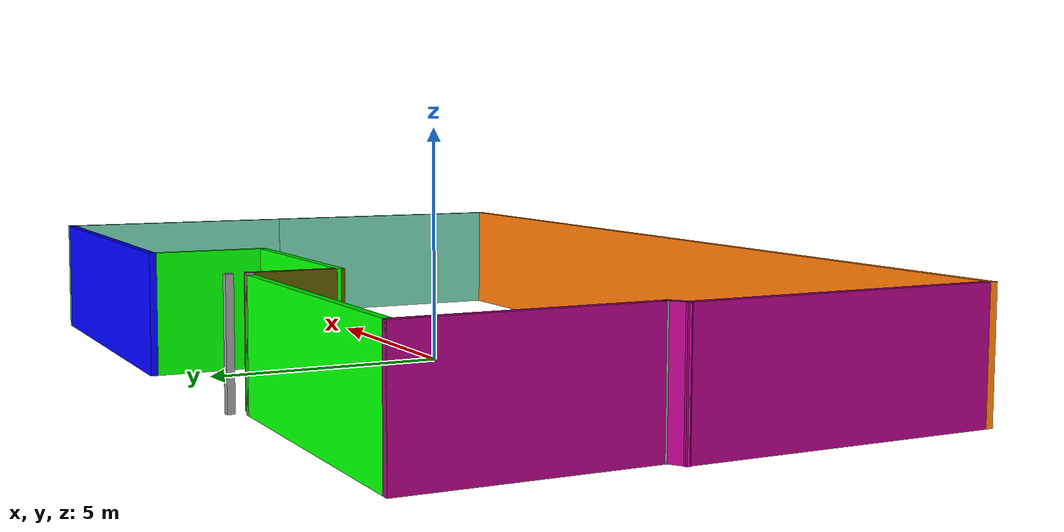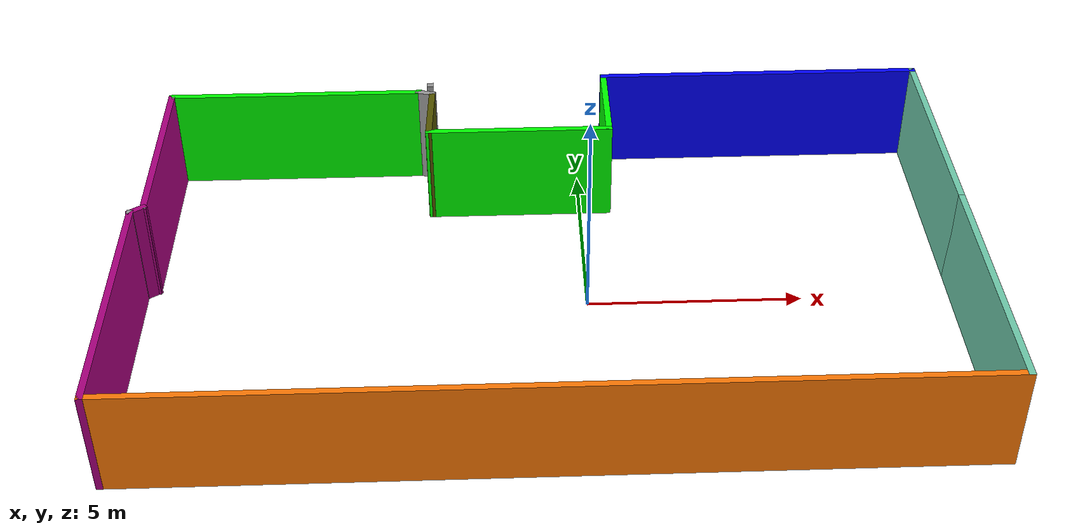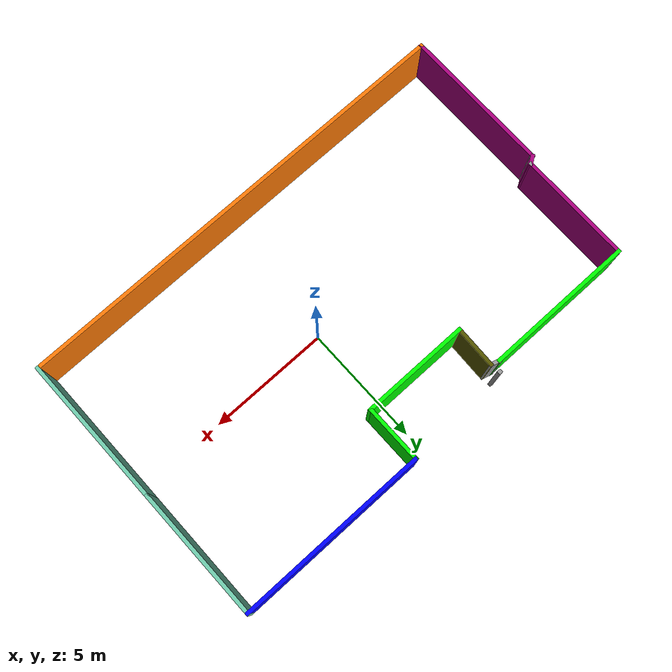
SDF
<?xml version='1.0'?>
<sdf version='1.6'>
  <model name='color_room'>
    <pose frame=''>-0.901218 0.253634 0 0 -0 0</pose>
    <link name='Wall_59'>
      <collision name='Wall_59_Collision'>
        <geometry>
          <box>
            <size>6.25 0.15 2.5</size>
          </box>
        </geometry>
        <pose frame=''>0 0 1.25 0 -0 0</pose>
      </collision>
      <visual name='Wall_59_Visual'>
        <pose frame=''>0 0 1.25 0 -0 0</pose>
        <geometry>
          <box>
            <size>6.25 0.15 2.5</size>
          </box>
        </geometry>
        <material>
          <script>
            <uri>file://media/materials/scripts/gazebo.material</uri>
            <name>Gazebo/Grey</name>
          </script>
          <ambient>0.435294 0.796078 0.67451 1</ambient>
        </material>
        <meta>
          <layer>0</layer>
        </meta>
      </visual>
      <pose frame=''>9.43976 -2.675 0 0 0 -1.5708</pose>
    </link>
    <link name='Wall_60'>
      <collision name='Wall_60_Collision'>
        <geometry>
          <box>
            <size>19 0.15 2.5</size>
          </box>
        </geometry>
        <pose frame=''>0 0 1.25 0 -0 0</pose>
      </collision>
      <visual name='Wall_60_Visual'>
        <pose frame=''>0 0 1.25 0 -0 0</pose>
        <geometry>
          <box>
            <size>19 0.15 2.5</size>
          </box>
        </geometry>
        <material>
          <script>
            <uri>file://media/materials/scripts/gazebo.material</uri>
            <name>Gazebo/Grey</name>
          </script>
          <ambient>0.996078 0.47451 0.0196078 1</ambient>
        </material>
        <meta>
          <layer>0</layer>
        </meta>
      </visual>
      <pose frame=''>0.014759 -5.725 0 0 -0 3.14159</pose>
    </link>
    <link name='Wall_61'>
      <collision name='Wall_61_Collision'>
        <geometry>
          <box>
            <size>6.25 0.15 2.5</size>
          </box>
        </geometry>
        <pose frame=''>0 0 1.25 0 -0 0</pose>
      </collision>
      <visual name='Wall_61_Visual'>
        <pose frame=''>0 0 1.25 0 -0 0</pose>
        <geometry>
          <box>
            <size>6.25 0.15 2.5</size>
          </box>
        </geometry>
        <material>
          <script>
            <uri>file://media/materials/scripts/gazebo.material</uri>
            <name>Gazebo/Grey</name>
          </script>
          <ambient>0.666667 0 0.498039 1</ambient>
        </material>
        <meta>
          <layer>0</layer>
        </meta>
      </visual>
      <pose frame=''>-9.41024 -2.675 0 0 -0 1.5708</pose>
    </link>
    <link name='Wall_62'>
      <collision name='Wall_62_Collision'>
        <geometry>
          <box>
            <size>0.15 0.15 2.5</size>
          </box>
        </geometry>
        <pose frame=''>0 0 1.25 0 -0 0</pose>
      </collision>
      <visual name='Wall_62_Visual'>
        <pose frame=''>0 0 1.25 0 -0 0</pose>
        <geometry>
          <box>
            <size>0.15 0.15 2.5</size>
          </box>
        </geometry>
        <material>
          <script>
            <uri>file://media/materials/scripts/gazebo.material</uri>
            <name>Gazebo/Grey</name>
          </script>
          <ambient>1 1 1 1</ambient>
        </material>
        <meta>
          <layer>0</layer>
        </meta>
      </visual>
      <pose frame=''>-9.41024 0.375 0 0 -0 0</pose>
    </link>
    <link name='Wall_63'>
      <collision name='Wall_63_Collision'>
        <geometry>
          <box>
            <size>0.15 0.15 2.5</size>
          </box>
        </geometry>
        <pose frame=''>0 0 1.25 0 -0 0</pose>
      </collision>
      <visual name='Wall_63_Visual'>
        <pose frame=''>0 0 1.25 0 -0 0</pose>
        <geometry>
          <box>
            <size>0.15 0.15 2.5</size>
          </box>
        </geometry>
        <material>
          <script>
            <uri>file://media/materials/scripts/gazebo.material</uri>
            <name>Gazebo/Grey</name>
          </script>
          <ambient>1 1 1 1</ambient>
        </material>
        <meta>
          <layer>0</layer>
        </meta>
      </visual>
      <pose frame=''>-9.41024 0.375 0 0 -0 0</pose>
    </link>
    <link name='Wall_66'>
      <collision name='Wall_66_Collision'>
        <geometry>
          <box>
            <size>0.15 0.15 2.5</size>
          </box>
        </geometry>
        <pose frame=''>0 0 1.25 0 -0 0</pose>
      </collision>
      <visual name='Wall_66_Visual'>
        <pose frame=''>0 0 1.25 0 -0 0</pose>
        <geometry>
          <box>
            <size>0.15 0.15 2.5</size>
          </box>
        </geometry>
        <material>
          <script>
            <uri>file://media/materials/scripts/gazebo.material</uri>
            <name>Gazebo/Grey</name>
          </script>
          <ambient>1 1 1 1</ambient>
        </material>
        <meta>
          <layer>0</layer>
        </meta>
      </visual>
      <pose frame=''>-9.1436 0.563103 0 0 -0 0</pose>
    </link>
    <link name='Wall_67'>
      <collision name='Wall_67_Collision'>
        <geometry>
          <box>
            <size>0.15 0.15 2.5</size>
          </box>
        </geometry>
        <pose frame=''>0 0 1.25 0 -0 0</pose>
      </collision>
      <visual name='Wall_67_Visual'>
        <pose frame=''>0 0 1.25 0 -0 0</pose>
        <geometry>
          <box>
            <size>0.15 0.15 2.5</size>
          </box>
        </geometry>
        <material>
          <script>
            <uri>file://media/materials/scripts/gazebo.material</uri>
            <name>Gazebo/Grey</name>
          </script>
          <ambient>1 1 1 1</ambient>
        </material>
        <meta>
          <layer>0</layer>
        </meta>
      </visual>
      <pose frame=''>-9.1436 0.563103 0 0 -0 0</pose>
    </link>
    <link name='Wall_68'>
      <collision name='Wall_68_Collision'>
        <geometry>
          <box>
            <size>0.15 0.15 2.5</size>
          </box>
        </geometry>
        <pose frame=''>0 0 1.25 0 -0 0</pose>
      </collision>
      <visual name='Wall_68_Visual'>
        <pose frame=''>0 0 1.25 0 -0 0</pose>
        <geometry>
          <box>
            <size>0.15 0.15 2.5</size>
          </box>
        </geometry>
        <material>
          <script>
            <uri>file://media/materials/scripts/gazebo.material</uri>
            <name>Gazebo/Grey</name>
          </script>
          <ambient>1 1 1 1</ambient>
        </material>
        <meta>
          <layer>0</layer>
        </meta>
      </visual>
      <pose frame=''>-9.1436 0.563103 0 0 -0 0</pose>
    </link>
    <link name='Wall_70'>
      <collision name='Wall_70_Collision'>
        <geometry>
          <box>
            <size>0.15 0.15 2.5</size>
          </box>
        </geometry>
        <pose frame=''>0 0 1.25 0 -0 0</pose>
      </collision>
      <visual name='Wall_70_Visual'>
        <pose frame=''>0 0 1.25 0 -0 0</pose>
        <geometry>
          <box>
            <size>0.15 0.15 2.5</size>
          </box>
        </geometry>
        <material>
          <script>
            <uri>file://media/materials/scripts/gazebo.material</uri>
            <name>Gazebo/Grey</name>
          </script>
          <ambient>1 1 1 1</ambient>
        </material>
        <meta>
          <layer>0</layer>
        </meta>
      </visual>
      <pose frame=''>-9.1436 0.563103 0 0 -0 0</pose>
    </link>
    <link name='Wall_71'>
      <collision name='Wall_71_Collision'>
        <geometry>
          <box>
            <size>0.15 0.15 2.5</size>
          </box>
        </geometry>
        <pose frame=''>0 0 1.25 0 -0 0</pose>
      </collision>
      <visual name='Wall_71_Visual'>
        <pose frame=''>0 0 1.25 0 -0 0</pose>
        <geometry>
          <box>
            <size>0.15 0.15 2.5</size>
          </box>
        </geometry>
        <material>
          <script>
            <uri>file://media/materials/scripts/gazebo.material</uri>
            <name>Gazebo/Grey</name>
          </script>
          <ambient>1 1 1 1</ambient>
        </material>
        <meta>
          <layer>0</layer>
        </meta>
      </visual>
      <pose frame=''>-9.1436 0.563103 0 0 -0 0</pose>
    </link>
    <link name='Wall_74'>
      <collision name='Wall_74_Collision'>
        <geometry>
          <box>
            <size>0.15 0.15 2.5</size>
          </box>
        </geometry>
        <pose frame=''>0 0 1.25 0 -0 0</pose>
      </collision>
      <visual name='Wall_74_Visual'>
        <pose frame=''>0 0 1.25 0 -0 0</pose>
        <geometry>
          <box>
            <size>0.15 0.15 2.5</size>
          </box>
        </geometry>
        <material>
          <script>
            <uri>file://media/materials/scripts/gazebo.material</uri>
            <name>Gazebo/Grey</name>
          </script>
          <ambient>1 1 1 1</ambient>
        </material>
        <meta>
          <layer>0</layer>
        </meta>
      </visual>
      <pose frame=''>-9.1436 0.563103 0 0 -0 0</pose>
    </link>
    <link name='Wall_77'>
      <collision name='Wall_77_Collision'>
        <geometry>
          <box>
            <size>5.5 0.15 2.5</size>
          </box>
        </geometry>
        <pose frame=''>0 0 1.25 0 -0 0</pose>
      </collision>
      <visual name='Wall_77_Visual'>
        <pose frame=''>0 0 1.25 0 -0 0</pose>
        <geometry>
          <box>
            <size>5.5 0.15 2.5</size>
          </box>
        </geometry>
        <material>
          <script>
            <uri>file://media/materials/scripts/gazebo.material</uri>
            <name>Gazebo/Grey</name>
          </script>
          <ambient>0.435294 0.796078 0.67451 1</ambient>
        </material>
        <meta>
          <layer>0</layer>
        </meta>
      </visual>
      <pose frame=''>9.43976 3.05 0 0 -0 1.5708</pose>
    </link>
    <link name='Wall_78'>
      <collision name='Wall_78_Collision'>
        <geometry>
          <box>
            <size>8 0.15 2.5</size>
          </box>
        </geometry>
        <pose frame=''>0 0 1.25 0 -0 0</pose>
      </collision>
      <visual name='Wall_78_Visual'>
        <pose frame=''>0 0 1.25 0 -0 0</pose>
        <geometry>
          <box>
            <size>8 0.15 2.5</size>
          </box>
        </geometry>
        <material>
          <script>
            <uri>file://media/materials/scripts/gazebo.material</uri>
            <name>Gazebo/Grey</name>
          </script>
          <ambient>0 0 1 1</ambient>
        </material>
        <meta>
          <layer>0</layer>
        </meta>
      </visual>
      <pose frame=''>5.51476 5.725 0 0 -0 3.14159</pose>
    </link>
    <link name='Wall_79'>
      <collision name='Wall_79_Collision'>
        <geometry>
          <box>
            <size>2.5 0.15 2.5</size>
          </box>
        </geometry>
        <pose frame=''>0 0 1.25 0 -0 0</pose>
      </collision>
      <visual name='Wall_79_Visual'>
        <pose frame=''>0 0 1.25 0 -0 0</pose>
        <geometry>
          <box>
            <size>2.5 0.15 2.5</size>
          </box>
        </geometry>
        <material>
          <script>
            <uri>file://media/materials/scripts/gazebo.material</uri>
            <name>Gazebo/Grey</name>
          </script>
          <ambient>0 1 0 1</ambient>
        </material>
        <meta>
          <layer>0</layer>
        </meta>
      </visual>
      <pose frame=''>1.58976 4.55 0 0 0 -1.5708</pose>
    </link>
    <link name='Wall_80'>
      <collision name='Wall_80_Collision'>
        <geometry>
          <box>
            <size>4.5 0.15 2.5</size>
          </box>
        </geometry>
        <pose frame=''>0 0 1.25 0 -0 0</pose>
      </collision>
      <visual name='Wall_80_Visual'>
        <pose frame=''>0 0 1.25 0 -0 0</pose>
        <geometry>
          <box>
            <size>4.5 0.15 2.5</size>
          </box>
        </geometry>
        <material>
          <script>
            <uri>file://media/materials/scripts/gazebo.material</uri>
            <name>Gazebo/Grey</name>
          </script>
          <ambient>0 1 0 1</ambient>
        </material>
        <meta>
          <layer>0</layer>
        </meta>
      </visual>
      <pose frame=''>-0.585241 3.375 0 0 -0 3.14159</pose>
    </link>
    <link name='Wall_82'>
      <collision name='Wall_82_Collision'>
        <geometry>
          <box>
            <size>0.15 0.15 2.5</size>
          </box>
        </geometry>
        <pose frame=''>0 0 1.25 0 -0 0</pose>
      </collision>
      <visual name='Wall_82_Visual'>
        <pose frame=''>0 0 1.25 0 -0 0</pose>
        <geometry>
          <box>
            <size>0.15 0.15 2.5</size>
          </box>
        </geometry>
        <material>
          <script>
            <uri>file://media/materials/scripts/gazebo.material</uri>
            <name>Gazebo/Grey</name>
          </script>
          <ambient>1 1 1 1</ambient>
        </material>
        <meta>
          <layer>0</layer>
        </meta>
      </visual>
      <pose frame=''>-2.76024 5.475 0 0 -0 0</pose>
    </link>
    <link name='Wall_84'>
      <collision name='Wall_84_Collision'>
        <geometry>
          <box>
            <size>0.476313 0.15 2.5</size>
          </box>
        </geometry>
        <pose frame=''>0 0 1.25 0 -0 0</pose>
      </collision>
      <visual name='Wall_84_Visual'>
        <pose frame=''>0 0 1.25 0 -0 0</pose>
        <geometry>
          <box>
            <size>0.476313 0.15 2.5</size>
          </box>
        </geometry>
        <material>
          <script>
            <uri>file://media/materials/scripts/gazebo.material</uri>
            <name>Gazebo/Grey</name>
          </script>
          <ambient>0.666667 0 0.498039 1</ambient>
        </material>
        <meta>
          <layer>0</layer>
        </meta>
      </visual>
      <pose frame=''>-9.27692 0.469052 0 0 -0 0.614379</pose>
    </link>
    <link name='Wall_85'>
      <collision name='Wall_85_Collision'>
        <geometry>
          <box>
            <size>4.75 0.15 2.5</size>
          </box>
        </geometry>
        <pose frame=''>0 0 1.25 0 -0 0</pose>
      </collision>
      <visual name='Wall_85_Visual'>
        <pose frame=''>0 0 1.25 0 -0 0</pose>
        <geometry>
          <box>
            <size>4.75 0.15 2.5</size>
          </box>
        </geometry>
        <material>
          <script>
            <uri>file://media/materials/scripts/gazebo.material</uri>
            <name>Gazebo/Grey</name>
          </script>
          <ambient>0.666667 0 0.498039 1</ambient>
        </material>
        <meta>
          <layer>0</layer>
        </meta>
      </visual>
      <pose frame=''>-9.1436 2.8631 0 0 -0 1.5708</pose>
    </link>
    <link name='Wall_86'>
      <collision name='Wall_86_Collision'>
        <geometry>
          <box>
            <size>0.15 0.15 2.5</size>
          </box>
        </geometry>
        <pose frame=''>0 0 1.25 0 -0 0</pose>
      </collision>
      <visual name='Wall_86_Visual'>
        <pose frame=''>0 0 1.25 0 -0 0</pose>
        <geometry>
          <box>
            <size>0.15 0.15 2.5</size>
          </box>
        </geometry>
        <material>
          <script>
            <uri>file://media/materials/scripts/gazebo.material</uri>
            <name>Gazebo/Grey</name>
          </script>
          <ambient>1 1 1 1</ambient>
        </material>
        <meta>
          <layer>0</layer>
        </meta>
      </visual>
      <pose frame=''>-9.1436 5.1631 0 0 -0 0</pose>
    </link>
    <link name='Wall_87'>
      <collision name='Wall_87_Collision'>
        <geometry>
          <box>
            <size>6.25 0.15 2.5</size>
          </box>
        </geometry>
        <pose frame=''>0 0 1.25 0 -0 0</pose>
      </collision>
      <visual name='Wall_87_Visual'>
        <pose frame=''>0 0 1.25 0 -0 0</pose>
        <geometry>
          <box>
            <size>6.25 0.15 2.5</size>
          </box>
        </geometry>
        <material>
          <script>
            <uri>file://media/materials/scripts/gazebo.material</uri>
            <name>Gazebo/Grey</name>
          </script>
          <ambient>0 1 0 1</ambient>
        </material>
        <meta>
          <layer>0</layer>
        </meta>
      </visual>
      <pose frame=''>-6.0936 5.1631 0 0 -0 0</pose>
    </link>
    <link name='Wall_88'>
      <collision name='Wall_88_Collision'>
        <geometry>
          <box>
            <size>0.5 0.15 2.5</size>
          </box>
        </geometry>
        <pose frame=''>0 0 1.25 0 -0 0</pose>
      </collision>
      <visual name='Wall_88_Visual'>
        <pose frame=''>0 0 1.25 0 -0 0</pose>
        <geometry>
          <box>
            <size>0.5 0.15 2.5</size>
          </box>
        </geometry>
        <material>
          <script>
            <uri>file://media/materials/scripts/gazebo.material</uri>
            <name>Gazebo/Grey</name>
          </script>
          <ambient>1 1 1 1</ambient>
        </material>
        <meta>
          <layer>0</layer>
        </meta>
      </visual>
      <pose frame=''>-2.87456 5.11781 0 0 0 -0.261799</pose>
    </link>
    <link name='Wall_90'>
      <collision name='Wall_90_Collision'>
        <geometry>
          <box>
            <size>1.8484 0.15 2.5</size>
          </box>
        </geometry>
        <pose frame=''>0 0 1.25 0 -0 0</pose>
      </collision>
      <visual name='Wall_90_Visual'>
        <pose frame=''>0 0 1.25 0 -0 0</pose>
        <geometry>
          <box>
            <size>1.8484 0.15 2.5</size>
          </box>
        </geometry>
        <material>
          <script>
            <uri>file://media/materials/scripts/gazebo.material</uri>
            <name>Gazebo/Grey</name>
          </script>
          <ambient>0.333333 0.333333 0 1</ambient>
        </material>
        <meta>
          <layer>0</layer>
        </meta>
      </visual>
      <pose frame=''>-2.73288 4.22376 0 0 -0 1.53858</pose>
    </link>
    <static>1</static>
  </model>
</sdf>
